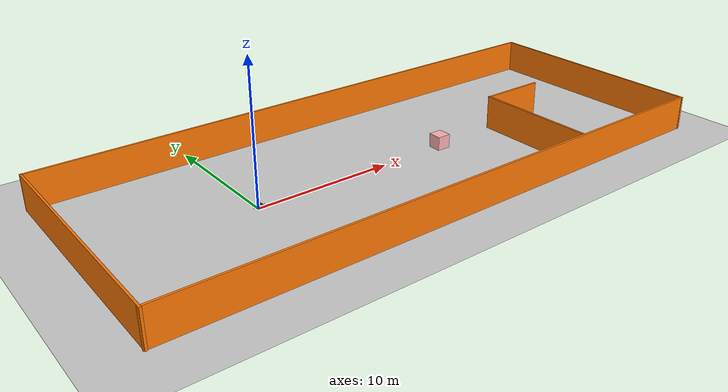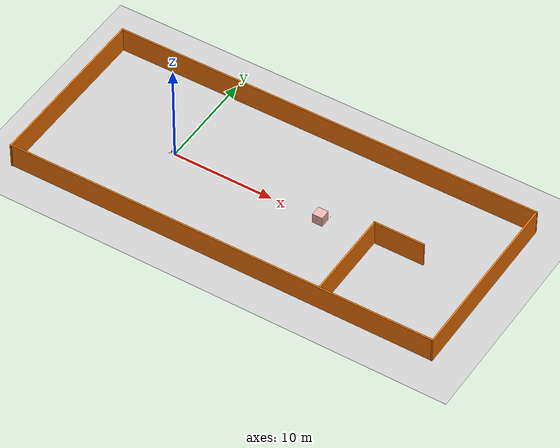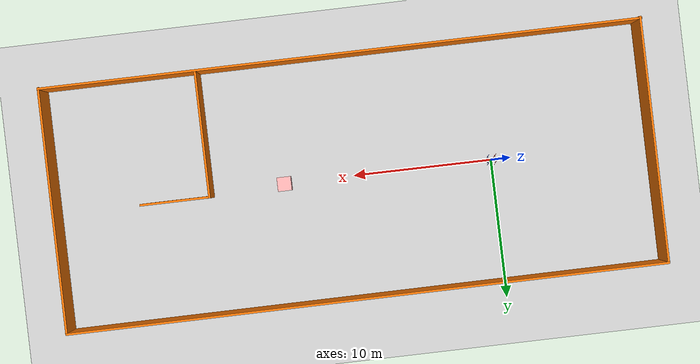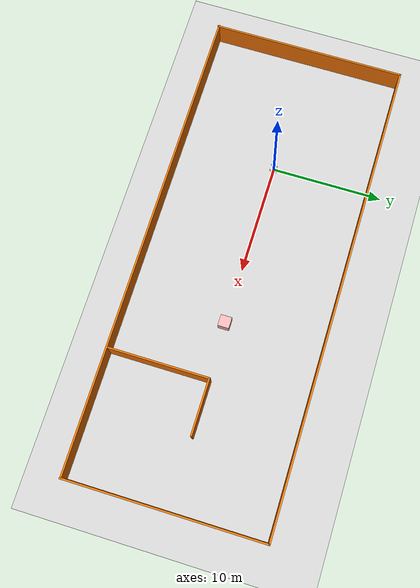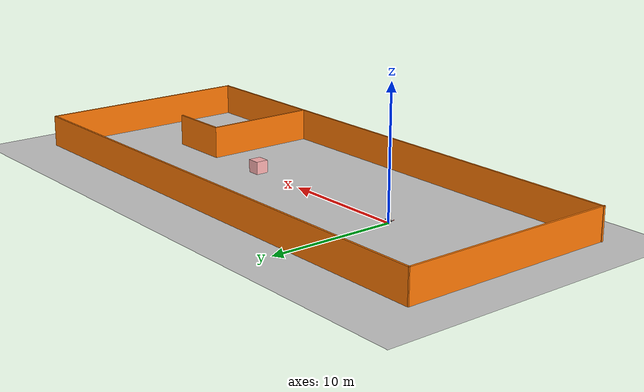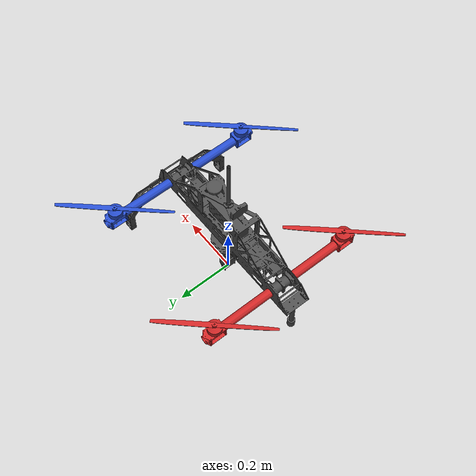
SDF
<sdf version="1.7">
 <world name="default">
  <light name="sun" type="directional">
   <pose>0 0 10 0 -0 0</pose>
   <diffuse>0.8 0.8 0.8 1</diffuse>
   <specular>0.2 0.2 0.2 1</specular>
   <attenuation>
    <range>1000</range>
    <constant>0.9</constant>
    <linear>0.01</linear>
    <quadratic>0.001</quadratic>
   </attenuation>
   <direction>-0.5 0.1 -0.9</direction>
   <spot><inner_angle>0</inner_angle><outer_angle>0</outer_angle><falloff>0</falloff></spot>
  </light>
  <model name="ground_plane">
   <static>1</static>
   <link name="link">
    <collision name="collision">
     <geometry><plane><normal>0 0 1</normal><size>100 100</size></plane></geometry>
     <surface><friction><ode><mu>100</mu><mu2>50</mu2></ode></friction></surface>
    </collision>
    <visual name="visual">
     <cast_shadows>0</cast_shadows>
     <geometry><plane><normal>0 0 1</normal><size>100 100</size></plane></geometry>
     <material>
      <script><uri>file://media/materials/scripts/gazebo.material</uri><name>Gazebo/Grey</name></script>
     </material>
    </visual>
   </link>
  </model>
  <gravity>0 0 -9.8</gravity>
  <magnetic_field>6e-06 2.3e-05 -4.2e-05</magnetic_field>
  <atmosphere type="adiabatic"/>
  <physics type="ode">
   <max_step_size>0.001</max_step_size>
   <real_time_factor>1</real_time_factor>
   <real_time_update_rate>1000</real_time_update_rate>
  </physics>
  <scene><ambient>0.4 0.4 0.4 1</ambient><background>0.7 0.7 0.7 1</background><shadows>1</shadows></scene>
  <spherical_coordinates>
   <surface_model>EARTH_WGS84</surface_model>
   <latitude_deg>0</latitude_deg>
   <longitude_deg>0</longitude_deg>
   <elevation>0</elevation>
   <heading_deg>0</heading_deg>
  </spherical_coordinates>
  <model name="selfdefine1">
   <link name="Wall_37">
    <pose>0.025291 8.67492 0 0 -0 0.002157</pose>
    <visual name="Wall_37_Visual">
     <pose>0 0 1.25 0 -0 0</pose>
     <geometry><box><size>42.6982 0.15 2.5</size></box></geometry>
     <material>
      <script><uri>file://media/materials/scripts/gazebo.material</uri><name>Gazebo/Grey</name></script>
      <ambient>0.996078 0.47451 0.0196078 1</ambient>
      <shader type="pixel"/>
     </material>
     <meta><layer>0</layer></meta>
    </visual>
    <collision name="Wall_37_Collision">
     <pose>0 0 1.25 0 -0 0</pose>
     <geometry><box><size>42.6982 0.15 2.5</size></box></geometry>
     <surface>
      <friction>
       <ode><mu>1</mu><mu2>1</mu2><fdir1>0 0 0</fdir1><slip1>0</slip1><slip2>0</slip2></ode>
       <torsional>
        <coefficient>1</coefficient>
        <patch_radius>0</patch_radius>
        <surface_radius>0</surface_radius>
        <use_patch_radius>1</use_patch_radius>
        <ode><slip>0</slip></ode>
       </torsional>
      </friction>
      <bounce><restitution_coefficient>0</restitution_coefficient><threshold>1e+06</threshold></bounce>
      <contact>
       <collide_without_contact>0</collide_without_contact>
       <collide_without_contact_bitmask>1</collide_without_contact_bitmask>
       <collide_bitmask>1</collide_bitmask>
       <ode>
        <soft_cfm>0</soft_cfm>
        <soft_erp>0.2</soft_erp>
        <kp>1e+13</kp>
        <kd>1</kd>
        <max_vel>0.01</max_vel>
        <min_depth>0</min_depth>
       </ode>
       <bullet>
        <split_impulse>1</split_impulse>
        <split_impulse_penetration_threshold>-0.01</split_impulse_penetration_threshold>
        <soft_cfm>0</soft_cfm>
        <soft_erp>0.2</soft_erp>
        <kp>1e+13</kp>
        <kd>1</kd>
       </bullet>
      </contact>
     </surface>
    </collision>
   </link>
   <link name="Wall_39">
    <pose>-21.2488 -0.045966 0 0 0 -1.5708</pose>
    <visual name="Wall_39_Visual">
     <pose>0 0 1.25 0 -0 0</pose>
     <geometry><box><size>17.5 0.15 2.5</size></box></geometry>
     <material>
      <script><uri>file://media/materials/scripts/gazebo.material</uri><name>Gazebo/Grey</name></script>
      <ambient>0.996078 0.47451 0.0196078 1</ambient>
      <shader type="pixel"/>
     </material>
     <meta><layer>0</layer></meta>
    </visual>
    <collision name="Wall_39_Collision">
     <pose>0 0 1.25 0 -0 0</pose>
     <geometry><box><size>17.5 0.15 2.5</size></box></geometry>
     <surface>
      <friction>
       <ode><mu>1</mu><mu2>1</mu2><fdir1>0 0 0</fdir1><slip1>0</slip1><slip2>0</slip2></ode>
       <torsional>
        <coefficient>1</coefficient>
        <patch_radius>0</patch_radius>
        <surface_radius>0</surface_radius>
        <use_patch_radius>1</use_patch_radius>
        <ode><slip>0</slip></ode>
       </torsional>
      </friction>
      <bounce><restitution_coefficient>0</restitution_coefficient><threshold>1e+06</threshold></bounce>
      <contact>
       <collide_without_contact>0</collide_without_contact>
       <collide_without_contact_bitmask>1</collide_without_contact_bitmask>
       <collide_bitmask>1</collide_bitmask>
       <ode>
        <soft_cfm>0</soft_cfm>
        <soft_erp>0.2</soft_erp>
        <kp>1e+13</kp>
        <kd>1</kd>
        <max_vel>0.01</max_vel>
        <min_depth>0</min_depth>
       </ode>
       <bullet>
        <split_impulse>1</split_impulse>
        <split_impulse_penetration_threshold>-0.01</split_impulse_penetration_threshold>
        <soft_cfm>0</soft_cfm>
        <soft_erp>0.2</soft_erp>
        <kp>1e+13</kp>
        <kd>1</kd>
       </bullet>
      </contact>
     </surface>
    </collision>
   </link>
   <link name="Wall_41">
    <pose>-2.1e-05 -8.64449 0 0 -0 0.000718</pose>
    <visual name="Wall_41_Visual">
     <pose>0 0 1.25 0 -0 0</pose>
     <geometry><box><size>42.7488 0.15 2.5</size></box></geometry>
     <material>
      <script><uri>file://media/materials/scripts/gazebo.material</uri><name>Gazebo/Grey</name></script>
      <ambient>0.996078 0.47451 0.0196078 1</ambient>
      <shader type="pixel"/>
     </material>
     <meta><layer>0</layer></meta>
    </visual>
    <collision name="Wall_41_Collision">
     <pose>0 0 1.25 0 -0 0</pose>
     <geometry><box><size>42.7488 0.15 2.5</size></box></geometry>
     <surface>
      <friction>
       <ode><mu>1</mu><mu2>1</mu2><fdir1>0 0 0</fdir1><slip1>0</slip1><slip2>0</slip2></ode>
       <torsional>
        <coefficient>1</coefficient>
        <patch_radius>0</patch_radius>
        <surface_radius>0</surface_radius>
        <use_patch_radius>1</use_patch_radius>
        <ode><slip>0</slip></ode>
       </torsional>
      </friction>
      <bounce><restitution_coefficient>0</restitution_coefficient><threshold>1e+06</threshold></bounce>
      <contact>
       <collide_without_contact>0</collide_without_contact>
       <collide_without_contact_bitmask>1</collide_without_contact_bitmask>
       <collide_bitmask>1</collide_bitmask>
       <ode>
        <soft_cfm>0</soft_cfm>
        <soft_erp>0.2</soft_erp>
        <kp>1e+13</kp>
        <kd>1</kd>
        <max_vel>0.01</max_vel>
        <min_depth>0</min_depth>
       </ode>
       <bullet>
        <split_impulse>1</split_impulse>
        <split_impulse_penetration_threshold>-0.01</split_impulse_penetration_threshold>
        <soft_cfm>0</soft_cfm>
        <soft_erp>0.2</soft_erp>
        <kp>1e+13</kp>
        <kd>1</kd>
       </bullet>
      </contact>
     </surface>
    </collision>
   </link>
   <link name="Wall_42">
    <pose>21.2994 0.015215 0 0 -0 1.5708</pose>
    <visual name="Wall_42_Visual">
     <pose>0 0 1.25 0 -0 0</pose>
     <geometry><box><size>17.5 0.15 2.5</size></box></geometry>
     <material>
      <script><uri>file://media/materials/scripts/gazebo.material</uri><name>Gazebo/Grey</name></script>
      <ambient>0.996078 0.47451 0.0196078 1</ambient>
      <shader type="pixel"/>
     </material>
     <meta><layer>0</layer></meta>
    </visual>
    <collision name="Wall_42_Collision">
     <pose>0 0 1.25 0 -0 0</pose>
     <geometry><box><size>17.5 0.15 2.5</size></box></geometry>
     <surface>
      <friction>
       <ode><mu>1</mu><mu2>1</mu2><fdir1>0 0 0</fdir1><slip1>0</slip1><slip2>0</slip2></ode>
       <torsional>
        <coefficient>1</coefficient>
        <patch_radius>0</patch_radius>
        <surface_radius>0</surface_radius>
        <use_patch_radius>1</use_patch_radius>
        <ode><slip>0</slip></ode>
       </torsional>
      </friction>
      <bounce><restitution_coefficient>0</restitution_coefficient><threshold>1e+06</threshold></bounce>
      <contact>
       <collide_without_contact>0</collide_without_contact>
       <collide_without_contact_bitmask>1</collide_without_contact_bitmask>
       <collide_bitmask>1</collide_bitmask>
       <ode>
        <soft_cfm>0</soft_cfm>
        <soft_erp>0.2</soft_erp>
        <kp>1e+13</kp>
        <kd>1</kd>
        <max_vel>0.01</max_vel>
        <min_depth>0</min_depth>
       </ode>
       <bullet>
        <split_impulse>1</split_impulse>
        <split_impulse_penetration_threshold>-0.01</split_impulse_penetration_threshold>
        <soft_cfm>0</soft_cfm>
        <soft_erp>0.2</soft_erp>
        <kp>1e+13</kp>
        <kd>1</kd>
       </bullet>
      </contact>
     </surface>
    </collision>
   </link>
   <link name="Wall_48">
    <pose>10.2345 -4.11049 0 0 -0 1.5708</pose>
    <visual name="Wall_48_Visual">
     <pose>0 0 1.25 0 -0 0</pose>
     <geometry><box><size>9 0.15 2.5</size></box></geometry>
     <material>
      <script><uri>file://media/materials/scripts/gazebo.material</uri><name>Gazebo/Grey</name></script>
      <ambient>0.996078 0.47451 0.0196078 1</ambient>
      <shader type="pixel"/>
     </material>
     <meta><layer>0</layer></meta>
    </visual>
    <collision name="Wall_48_Collision">
     <pose>0 0 1.25 0 -0 0</pose>
     <geometry><box><size>9 0.15 2.5</size></box></geometry>
     <surface>
      <friction>
       <ode><mu>1</mu><mu2>1</mu2><fdir1>0 0 0</fdir1><slip1>0</slip1><slip2>0</slip2></ode>
       <torsional>
        <coefficient>1</coefficient>
        <patch_radius>0</patch_radius>
        <surface_radius>0</surface_radius>
        <use_patch_radius>1</use_patch_radius>
        <ode><slip>0</slip></ode>
       </torsional>
      </friction>
      <bounce><restitution_coefficient>0</restitution_coefficient><threshold>1e+06</threshold></bounce>
      <contact>
       <collide_without_contact>0</collide_without_contact>
       <collide_without_contact_bitmask>1</collide_without_contact_bitmask>
       <collide_bitmask>1</collide_bitmask>
       <ode>
        <soft_cfm>0</soft_cfm>
        <soft_erp>0.2</soft_erp>
        <kp>1e+13</kp>
        <kd>1</kd>
        <max_vel>0.01</max_vel>
        <min_depth>0</min_depth>
       </ode>
       <bullet>
        <split_impulse>1</split_impulse>
        <split_impulse_penetration_threshold>-0.01</split_impulse_penetration_threshold>
        <soft_cfm>0</soft_cfm>
        <soft_erp>0.2</soft_erp>
        <kp>1e+13</kp>
        <kd>1</kd>
       </bullet>
      </contact>
     </surface>
    </collision>
   </link>
   <link name="Wall_50">
    <pose>12.6595 0.314514 0 0 -0 0</pose>
    <visual name="Wall_50_Visual">
     <pose>0 0 1.25 0 -0 0</pose>
     <geometry><box><size>5 0.15 2.5</size></box></geometry>
     <material>
      <script><uri>file://media/materials/scripts/gazebo.material</uri><name>Gazebo/Grey</name></script>
      <ambient>0.996078 0.47451 0.0196078 1</ambient>
      <shader type="pixel"/>
     </material>
     <meta><layer>0</layer></meta>
    </visual>
    <collision name="Wall_50_Collision">
     <pose>0 0 1.25 0 -0 0</pose>
     <geometry><box><size>5 0.15 2.5</size></box></geometry>
     <surface>
      <friction>
       <ode><mu>1</mu><mu2>1</mu2><fdir1>0 0 0</fdir1><slip1>0</slip1><slip2>0</slip2></ode>
       <torsional>
        <coefficient>1</coefficient>
        <patch_radius>0</patch_radius>
        <surface_radius>0</surface_radius>
        <use_patch_radius>1</use_patch_radius>
        <ode><slip>0</slip></ode>
       </torsional>
      </friction>
      <bounce><restitution_coefficient>0</restitution_coefficient><threshold>1e+06</threshold></bounce>
      <contact>
       <collide_without_contact>0</collide_without_contact>
       <collide_without_contact_bitmask>1</collide_without_contact_bitmask>
       <collide_bitmask>1</collide_bitmask>
       <ode>
        <soft_cfm>0</soft_cfm>
        <soft_erp>0.2</soft_erp>
        <kp>1e+13</kp>
        <kd>1</kd>
        <max_vel>0.01</max_vel>
        <min_depth>0</min_depth>
       </ode>
       <bullet>
        <split_impulse>1</split_impulse>
        <split_impulse_penetration_threshold>-0.01</split_impulse_penetration_threshold>
        <soft_cfm>0</soft_cfm>
        <soft_erp>0.2</soft_erp>
        <kp>1e+13</kp>
        <kd>1</kd>
       </bullet>
      </contact>
     </surface>
    </collision>
   </link>
   <link name="link_0">
    <inertial>
     <mass>1000</mass>
     <inertia><ixx>166.667</ixx><ixy>0</ixy><ixz>0</ixz><iyy>166.667</iyy><iyz>0</iyz><izz>166.667</izz></inertia>
    </inertial>
    <pose>5 0 0.5 0 -0 0</pose>
    <visual name="visual">
     <geometry><box><size>1 1 1</size></box></geometry>
     <material>
      <lighting>1</lighting>
      <script><uri>file://media/materials/scripts/gazebo.material</uri><name>Gazebo/Grey</name></script>
      <shader type="pixel"><normal_map>__default__</normal_map></shader>
      <ambient>1 0.3 0.3 1</ambient>
      <diffuse>1 0.7 0.7 1</diffuse>
      <specular>1 0.01 0.01 1</specular>
      <emissive>1 0 0 1</emissive>
     </material>
    </visual>
    <collision name="collision">
     <geometry><box><size>1 1 1</size></box></geometry>
     <surface>
      <friction>
       <ode><mu>1</mu><mu2>1</mu2><fdir1>0 0 0</fdir1><slip1>0</slip1><slip2>0</slip2></ode>
       <torsional>
        <coefficient>1</coefficient>
        <patch_radius>0</patch_radius>
        <surface_radius>0</surface_radius>
        <use_patch_radius>1</use_patch_radius>
        <ode><slip>0</slip></ode>
       </torsional>
      </friction>
      <bounce><restitution_coefficient>0</restitution_coefficient><threshold>1e+06</threshold></bounce>
      <contact>
       <collide_without_contact>0</collide_without_contact>
       <collide_without_contact_bitmask>1</collide_without_contact_bitmask>
       <collide_bitmask>1</collide_bitmask>
       <ode>
        <soft_cfm>0</soft_cfm>
        <soft_erp>0.2</soft_erp>
        <kp>1e+13</kp>
        <kd>1</kd>
        <max_vel>0.01</max_vel>
        <min_depth>0</min_depth>
       </ode>
       <bullet>
        <split_impulse>1</split_impulse>
        <split_impulse_penetration_threshold>-0.01</split_impulse_penetration_threshold>
        <soft_cfm>0</soft_cfm>
        <soft_erp>0.2</soft_erp>
        <kp>1e+13</kp>
        <kd>1</kd>
       </bullet>
      </contact>
     </surface>
    </collision>
   </link>
   <static>1</static>
   <pose>10 0 0 0 -0 0</pose>
  </model>
  <model name="quadtilt_am"><pose>0 0 0.25 0 0 0</pose><include><uri>model://quadtilt_am</uri></include></model>
  <model name="target">
   <pose>16.0 0.0 1.05 0 0 0</pose>
   <link name="link_0">
    <inertial>
     <mass>0.01</mass>
     <inertia><ixx>6.6e-07</ixx><ixy>0</ixy><ixz>0</ixz><iyy>6.6e-07</iyy><iyz>0</iyz><izz>6.6e-07</izz></inertia>
    </inertial>
    <collision name="collision">
     <geometry><box><size>0.02 0.02 0.02</size></box></geometry>
     <surface>
      <contact>
       <ode>
        <kp>1e+06</kp>
        <kd>100</kd>
        <soft_cfm>0.001</soft_cfm>
        <soft_erp>0.2</soft_erp>
        <max_vel>0.1</max_vel>
        <min_depth>0.001</min_depth>
       </ode>
      </contact>
      <friction><ode><mu>1.0</mu><mu2>1.0</mu2></ode></friction>
     </surface>
    </collision>
    <visual name="visual">
     <geometry><box><size>0.02 0.02 0.02</size></box></geometry>
     <material><ambient>0 0 1 1</ambient><diffuse>0 0 1 1</diffuse></material>
    </visual>
   </link>
   <static>0</static>
  </model>
 </world>
</sdf>

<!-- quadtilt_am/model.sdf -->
<sdf version='1.7'>
  <model name='quadtilt_new'>
    <link name='base_link'>
      <inertial>
        <pose>0.0 -0.000647 0.024368 0 -0 0</pose>
        <mass>2.3411</mass>
        <inertia>
          <ixx>0.0013622</ixx>
          <ixy>1.2109e-05</ixy>
          <ixz>2.1278e-05</ixz>
          <iyy>0.011253</iyy>
          <iyz>1.003e-06</iyz>
          <izz>0.011215</izz>
        </inertia>
      </inertial>

      <collision name='landing_gear_front_collision'>
      <pose>-0.3 0 -0.18 0 0 0</pose> <!-- ⚠️ 请替换为你前起落架脚尖的实际坐标 -->
      <geometry>
        <sphere><radius>0.03</radius></sphere>
      </geometry>
      <surface>
        <contact>
          <ode>
            <!-- [关键1] 降低刚度 kp。原本1e6太硬像钢铁，现在1e5(十万)像硬橡胶 -->
            <kp>1000000</kp>
            <!-- [关键2] 极大提高阻尼 kd。以前是100，现在2000。吸收一切高频震动动能 -->
            <kd>10</kd>
            <!-- [关键3] 给一个极小但非0的允许修正速度，防止挤压应力把 EKF 炸掉 -->
            <max_vel>0.2</max_vel>
            <!-- [关键4] 允许 5 毫米的弹性形变陷落深度，作为物理缓冲层 -->
            <min_depth>0.001</min_depth>
          </ode>
        </contact>
        <friction><ode><mu>1.0</mu><mu2>1.0</mu2></ode></friction>
      </surface>
    </collision>

    <!-- 左起落架脚垫 -->
    <collision name='landing_gear_left_collision'>
      <pose>0.3 0.2 -0.18 0 0 0</pose> <!-- ⚠️ 请替换为实际坐标 -->
      <geometry>
        <sphere><radius>0.03</radius></sphere>
      </geometry>
      <surface>
        <contact>
          <ode>
            <!-- [关键1] 降低刚度 kp。原本1e6太硬像钢铁，现在1e5(十万)像硬橡胶 -->
            <kp>1000000</kp>
            <!-- [关键2] 极大提高阻尼 kd。以前是100，现在2000。吸收一切高频震动动能 -->
            <kd>10</kd>
            <!-- [关键3] 给一个极小但非0的允许修正速度，防止挤压应力把 EKF 炸掉 -->
            <max_vel>0.2</max_vel>
            <!-- [关键4] 允许 5 毫米的弹性形变陷落深度，作为物理缓冲层 -->
            <min_depth>0.001</min_depth>
          </ode>
        </contact>
        <friction><ode><mu>1.0</mu><mu2>1.0</mu2></ode></friction>
      </surface>
    </collision>

    <!-- 右起落架脚垫 -->
    <collision name='landing_gear_right_collision'>
      <pose>0.3 -0.2 -0.18 0 0 0</pose> <!-- ⚠️ 请替换为实际坐标 -->
      <geometry>
        <sphere><radius>0.03</radius></sphere>
      </geometry>
      <surface>
        <contact>
          <ode>
            <!-- [关键1] 降低刚度 kp。原本1e6太硬像钢铁，现在1e5(十万)像硬橡胶 -->
            <kp>1000000</kp>
            <!-- [关键2] 极大提高阻尼 kd。以前是100，现在2000。吸收一切高频震动动能 -->
            <kd>10</kd>
            <!-- [关键3] 给一个极小但非0的允许修正速度，防止挤压应力把 EKF 炸掉 -->
            <max_vel>0.2</max_vel>
            <!-- [关键4] 允许 5 毫米的弹性形变陷落深度，作为物理缓冲层 -->
            <min_depth>0.001</min_depth>
          </ode>
        </contact>
        <friction><ode><mu>1.0</mu><mu2>1.0</mu2></ode></friction>
      </surface>
    </collision>

      <visual name='base_link_visual'>
        <pose>0 0 0 0 -0 0</pose>
        <geometry>
          <mesh>
            <scale>1 1 1</scale>
            <uri>model://quadtilt_new/meshes/base_link.STL</uri>
          </mesh>
        </geometry>
        <material>
          <script>
            <name>Gazebo/DarkGrey</name>
            <uri>file://media/materials/scripts/gazebo.material</uri>
          </script>
        </material>
      </visual>
    </link>

    <!-- IMU Link -->
    <link name='imu_link'>
      <pose>0 0 0 0 0 0</pose>
      <inertial>
        <pose>0 0 0 0 0 0</pose>
        <mass>0.015</mass>
        <inertia>
          <ixx>0.00001</ixx><ixy>0</ixy><ixz>0</ixz>
          <iyy>0.00002</iyy><iyz>0</iyz><izz>0.00002</izz>
        </inertia>
      </inertial>
      <sensor name="imu_sensor" type="imu">
        <pose>0 0 0 3.141593 0 0</pose>
        <always_on>1</always_on>
        <update_rate>1000.0</update_rate>
      </sensor>
    </link>
    <joint name='imu_joint' type='fixed'>
      <child>imu_link</child>
      <parent>base_link</parent>
    </joint>

    <joint name='tilt_0_joint' type='revolute'>
      <pose relative_to='base_link'>0.255 0 0 -1.5708 -1.5708 -3.14159</pose>
      <parent>base_link</parent>
      <child>tilt_0_Link</child>
      <axis>
        <xyz>0 0 1</xyz>
        <limit>
          <lower>-1.57</lower>
          <upper>1.57</upper>
          <effort>10</effort>
          <velocity>2</velocity>
        </limit>
        <dynamics>
          <spring_reference>0</spring_reference>
          <spring_stiffness>0</spring_stiffness>
        </dynamics>
      </axis>
    </joint>
    <link name='tilt_0_Link'>
      <pose relative_to='tilt_0_joint'>0 0 0 0 -0 0</pose>
      <inertial>
        <pose>0.028311 -0 -0 0 -0 0</pose>
        <mass>0.94736</mass>
        <inertia>
          <ixx>0.0033591</ixx>
          <ixy>-3.2015e-12</ixy>
          <ixz>5.825e-11</ixz>
          <iyy>0.0032937</iyy>
          <iyz>6.3798e-10</iyz>
          <izz>0.0001883</izz>
        </inertia>
      </inertial>
      <collision name='tilt_0_Link_collision'>
        <pose>0 0 0 0 -0 0</pose>
        <geometry>
          <mesh>
            <scale>1 1 1</scale>
            <uri>model://quadtilt_new/meshes/tilt_0_Link.STL</uri>
          </mesh>
        </geometry>
      </collision>
      <visual name='tilt_0_Link_visual'>
        <pose>0 0 0 0 -0 0</pose>
        <geometry>
          <mesh>
            <scale>1 1 1</scale>
            <uri>model://quadtilt_new/meshes/tilt_0_Link.STL</uri>
          </mesh>
        </geometry>
        <material><script><name>Gazebo/Blue</name></script></material>
      </visual>
    </link>
    <joint name='properller_0_joint' type='revolute'>
      <pose relative_to='tilt_0_Link'>0.05075 0 0.255 -1.5708 -0 -1.5708</pose>
      <parent>tilt_0_Link</parent>
      <child>properller_0_Link</child>
      <axis>
        <xyz>0 0 1</xyz>
        <limit>
          <lower>-1e+16</lower>
          <upper>1e+16</upper>
        </limit>
        <dynamics>
          <damping>0.002</damping>
          <friction>0.005</friction>
          <spring_reference>0</spring_reference>
          <spring_stiffness>0</spring_stiffness>
        </dynamics>
      </axis>
    </joint>
    <link name='properller_0_Link'>
      <pose relative_to='properller_0_joint'>0 0 0 0 -0 0</pose>
      <inertial>
        <pose>0 0 0.005 0 -0 0</pose>
        <mass>0.025</mass>
        <inertia>
          <ixx>0.00005</ixx>
          <ixy>0</ixy>
          <ixz>0</ixz>
          <iyy>0.00005</iyy>
          <iyz>0</iyz>
          <izz>0.0003</izz>  <!-- 匹配 15 寸桨的转动惯量 -->
        </inertia>
      </inertial>
      <visual name='properller_0_Link_visual'>
        <pose>0 0 0 0 -0 0</pose>
        <geometry>
          <mesh>
            <scale>1 1 1</scale>
            <uri>model://quadtilt_new/meshes/properller_0_Link.STL</uri>
          </mesh>
        </geometry>
        <material><script><name>Gazebo/Blue</name></script></material>
      </visual>
    </link>
    <joint name='properller_2_joint' type='revolute'>
      <pose relative_to='tilt_0_Link'>0.05075 0 -0.255 -1.5708 -0 -1.5708</pose>
      <parent>tilt_0_Link</parent>
      <child>properller_2_Link</child>
      <axis>
        <xyz>0 0 1</xyz>
        <limit>
          <lower>-1e+16</lower>
          <upper>1e+16</upper>
        </limit>
        <dynamics>
          <damping>0.002</damping>
          <friction>0.005</friction>
          <spring_reference>0</spring_reference>
          <spring_stiffness>0</spring_stiffness>
        </dynamics>
      </axis>
    </joint>
    <link name='properller_2_Link'>
      <pose relative_to='properller_2_joint'>0 0 0 0 -0 0</pose>
      <inertial>
        <pose>-0 -0 0.005 0 -0 0</pose>
        <mass>0.025</mass>
        <inertia>
          <ixx>0.00005</ixx>
          <ixy>0</ixy>
          <ixz>0</ixz>
          <iyy>0.00005</iyy>
          <iyz>0</iyz>
          <izz>0.0003</izz>  <!-- 匹配 15 寸桨的转动惯量 -->
        </inertia>
      </inertial>
      <visual name='properller_2_Link_visual'>
        <pose>0 0 0 0 -0 0</pose>
        <geometry>
          <mesh>
            <scale>1 1 1</scale>
            <uri>model://quadtilt_new/meshes/properller_2_Link.STL</uri>
          </mesh>
        </geometry>
        <material><script><name>Gazebo/Blue</name></script></material>
      </visual>
    </link>
    <joint name='tilt_1_joint' type='revolute'>
      <pose relative_to='base_link'>-0.255 0 0 -1.5708 -1.5708 -3.14159</pose>
      <parent>base_link</parent>
      <child>tilt_1_Link</child>
      <axis>
        <xyz>0 0 1</xyz>
        <limit>
          <lower>-1.57</lower>
          <upper>1.57</upper>
          <effort>10</effort>
          <velocity>2</velocity>
        </limit>
        <dynamics>
          <spring_reference>0</spring_reference>
          <spring_stiffness>0</spring_stiffness>
        </dynamics>
      </axis>
    </joint>
    <link name='tilt_1_Link'>
      <pose relative_to='tilt_1_joint'>0 0 0 0 -0 0</pose>
      <inertial>
        <pose>0.028311 -0 -0 0 -0 0</pose>
        <mass>0.94736</mass>
        <inertia>
          <ixx>0.0033591</ixx>
          <ixy>-3.2015e-12</ixy>
          <ixz>5.825e-11</ixz>
          <iyy>0.0032937</iyy>
          <iyz>6.3798e-10</iyz>
          <izz>0.0001883</izz>
        </inertia>
      </inertial>
      <collision name='tilt_1_Link_collision'>
        <pose>0 0 0 0 -0 0</pose>
        <geometry>
          <mesh>
            <scale>1 1 1</scale>
            <uri>model://quadtilt_new/meshes/tilt_1_Link.STL</uri>
          </mesh>
        </geometry>
      </collision>
      <visual name='tilt_1_Link_visual'>
        <pose>0 0 0 0 -0 0</pose>
        <geometry>
          <mesh>
            <scale>1 1 1</scale>
            <uri>model://quadtilt_new/meshes/tilt_1_Link.STL</uri>
          </mesh>
        </geometry>
        <material><script><name>Gazebo/Red</name></script></material>
      </visual>
    </link>
    <joint name='properller_1_joint' type='revolute'>
      <pose relative_to='tilt_1_Link'>0.05075 0 -0.255 -1.5708 -0 -1.5708</pose>
      <parent>tilt_1_Link</parent>
      <child>properller_1_Link</child>
      <axis>
        <xyz>0 0 1</xyz>
        <limit>
          <lower>-1e+16</lower>
          <upper>1e+16</upper>
        </limit>
        <dynamics>
          <damping>0.002</damping>
          <friction>0.005</friction>
          <spring_reference>0</spring_reference>
          <spring_stiffness>0</spring_stiffness>
        </dynamics>
      </axis>
    </joint>
    <link name='properller_1_Link'>
      <pose relative_to='properller_1_joint'>0 0 0 0 -0 0</pose>
      <inertial>
        <pose>-0 -0 0.005 0 -0 0</pose>
        <mass>0.025</mass>
        <inertia>
          <ixx>0.00005</ixx>
          <ixy>0</ixy>
          <ixz>0</ixz>
          <iyy>0.00005</iyy>
          <iyz>0</iyz>
          <izz>0.0003</izz>  <!-- 匹配 15 寸桨的转动惯量 -->
        </inertia>
      </inertial>
      <visual name='properller_1_Link_visual'>
        <pose>0 0 0 0 -0 0</pose>
        <geometry>
          <mesh>
            <scale>1 1 1</scale>
            <uri>model://quadtilt_new/meshes/properller_1_Link.STL</uri>
          </mesh>
        </geometry>
        <material><script><name>Gazebo/Red</name></script></material>
      </visual>
    </link>
    <joint name='properller_3_joint' type='revolute'>
      <pose relative_to='tilt_1_Link'>0.05075 0 0.255 -1.5708 -0 -1.5708</pose>
      <parent>tilt_1_Link</parent>
      <child>properller_3_Link</child>
      <axis>
        <xyz>0 0 1</xyz>
        <limit>
          <lower>-1e+16</lower>
          <upper>1e+16</upper>
        </limit>
        <dynamics>
          <spring_reference>0</spring_reference>
          <spring_stiffness>0</spring_stiffness>
        </dynamics>
      </axis>
    </joint>
    <link name='properller_3_Link'>
      <pose relative_to='properller_3_joint'>0 0 0 0 -0 0</pose>
      <inertial>
        <pose>0 0 0.005 0 -0 0</pose>
        <mass>0.025</mass>
        <inertia>
          <ixx>0.00005</ixx>
          <ixy>0</ixy>
          <ixz>0</ixz>
          <iyy>0.00005</iyy>
          <iyz>0</iyz>
          <izz>0.0003</izz>  <!-- 匹配 15 寸桨的转动惯量 -->
        </inertia>
      </inertial>
      <visual name='properller_3_Link_visual'>
        <pose>0 0 0 0 -0 0</pose>
        <geometry>
          <mesh>
            <scale>1 1 1</scale>
            <uri>model://quadtilt_new/meshes/properller_3_Link.STL</uri>
          </mesh>
        </geometry>
        <material><script><name>Gazebo/Red</name></script></material>
      </visual>
    </link>

    <!-- 插件区域 (气动 + 飞控)                                      -->

    <!-- Aero Prop 0 (CCW) -->
    <plugin name="rotor_0_blade_1" filename="libLiftDragPlugin.so"><a0>0.3</a0><alpha_stall>1.4</alpha_stall><cla>4.25</cla><cda>0.10</cda><cma>0.0</cma><cla_stall>-0.025</cla_stall><cda_stall>0.0</cda_stall><cma_stall>0.0</cma_stall><area>0.0045</area><air_density>1.2041</air_density><cp>0.13 0 0</cp><forward>0 1 0</forward><upward>0 0 1</upward><link_name>properller_0_Link</link_name></plugin>
    <plugin name="rotor_0_blade_2" filename="libLiftDragPlugin.so"><a0>0.3</a0><alpha_stall>1.4</alpha_stall><cla>4.25</cla><cda>0.10</cda><cma>0.0</cma><cla_stall>-0.025</cla_stall><cda_stall>0.0</cda_stall><cma_stall>0.0</cma_stall><area>0.0045</area><air_density>1.2041</air_density><cp>-0.13 0 0</cp><forward>0 -1 0</forward><upward>0 0 1</upward><link_name>properller_0_Link</link_name></plugin>

    <!-- Aero Prop 1 (CCW) -->
    <plugin name="rotor_1_blade_1" filename="libLiftDragPlugin.so"><a0>0.3</a0><alpha_stall>1.4</alpha_stall><cla>4.25</cla><cda>0.10</cda><cma>0.0</cma><cla_stall>-0.025</cla_stall><cda_stall>0.0</cda_stall><cma_stall>0.0</cma_stall><area>0.0045</area><air_density>1.2041</air_density><cp>0.13 0 0</cp><forward>0 1 0</forward><upward>0 0 1</upward><link_name>properller_1_Link</link_name></plugin>
    <plugin name="rotor_1_blade_2" filename="libLiftDragPlugin.so"><a0>0.3</a0><alpha_stall>1.4</alpha_stall><cla>4.25</cla><cda>0.10</cda><cma>0.0</cma><cla_stall>-0.025</cla_stall><cda_stall>0.0</cda_stall><cma_stall>0.0</cma_stall><area>0.0045</area><air_density>1.2041</air_density><cp>-0.13 0 0</cp><forward>0 -1 0</forward><upward>0 0 1</upward><link_name>properller_1_Link</link_name></plugin>

    <!-- Aero Prop 2 (CW) -->
    <plugin name="rotor_2_blade_1" filename="libLiftDragPlugin.so"><a0>0.3</a0><alpha_stall>1.4</alpha_stall><cla>4.25</cla><cda>0.10</cda><cma>0.0</cma><cla_stall>-0.025</cla_stall><cda_stall>0.0</cda_stall><cma_stall>0.0</cma_stall><area>0.0045</area><air_density>1.2041</air_density><cp>0.13 0 0</cp><forward>0 -1 0</forward><upward>0 0 1</upward><link_name>properller_2_Link</link_name></plugin>
    <plugin name="rotor_2_blade_2" filename="libLiftDragPlugin.so"><a0>0.3</a0><alpha_stall>1.4</alpha_stall><cla>4.25</cla><cda>0.10</cda><cma>0.0</cma><cla_stall>-0.025</cla_stall><cda_stall>0.0</cda_stall><cma_stall>0.0</cma_stall><area>0.0045</area><air_density>1.2041</air_density><cp>-0.13 0 0</cp><forward>0 1 0</forward><upward>0 0 1</upward><link_name>properller_2_Link</link_name></plugin>

    <!-- Aero Prop 3 (CW) -->
    <plugin name="rotor_3_blade_1" filename="libLiftDragPlugin.so"><a0>0.3</a0><alpha_stall>1.4</alpha_stall><cla>4.25</cla><cda>0.10</cda><cma>0.0</cma><cla_stall>-0.025</cla_stall><cda_stall>0.0</cda_stall><cma_stall>0.0</cma_stall><area>0.0045</area><air_density>1.2041</air_density><cp>0.13 0 0</cp><forward>0 -1 0</forward><upward>0 0 1</upward><link_name>properller_3_Link</link_name></plugin>
    <plugin name="rotor_3_blade_2" filename="libLiftDragPlugin.so"><a0>0.3</a0><alpha_stall>1.4</alpha_stall><cla>4.25</cla><cda>0.10</cda><cma>0.0</cma><cla_stall>-0.025</cla_stall><cda_stall>0.0</cda_stall><cma_stall>0.0</cma_stall><area>0.0045</area><air_density>1.2041</air_density><cp>-0.13 0 0</cp><forward>0 1 0</forward><upward>0 0 1</upward><link_name>properller_3_Link</link_name></plugin>

    <!-- ArduPilot Control -->
    <plugin name="ardupilot_plugin" filename="libArduPilotPlugin.so">
      <fdm_addr>127.0.0.1</fdm_addr>
      <fdm_port_in>9002</fdm_port_in>
      <fdm_port_out>9003</fdm_port_out>
      <modelXYZToAirplaneXForwardZDown>0 0 0 3.141593 0 0</modelXYZToAirplaneXForwardZDown>
      <imuName>quadtilt_new::imu_link::imu_sensor</imuName>
      <connectionTimeoutMaxCount>5</connectionTimeoutMaxCount>

      <!-- Motors (0-3) -->
      <control channel="0"><type>VELOCITY</type><offset>0</offset><p_gain>0.20</p_gain><i_gain>0</i_gain><d_gain>0</d_gain><i_max>0</i_max><i_min>0</i_min><cmd_max>2.5</cmd_max><cmd_min>-2.5</cmd_min><jointName>properller_0_joint</jointName><multiplier>800</multiplier></control>
      <control channel="1"><type>VELOCITY</type><offset>0</offset><p_gain>0.20</p_gain><i_gain>0</i_gain><d_gain>0</d_gain><i_max>0</i_max><i_min>0</i_min><cmd_max>2.5</cmd_max><cmd_min>-2.5</cmd_min><jointName>properller_1_joint</jointName><multiplier>800</multiplier></control>
      <control channel="2"><type>VELOCITY</type><offset>0</offset><p_gain>0.20</p_gain><i_gain>0</i_gain><d_gain>0</d_gain><i_max>0</i_max><i_min>0</i_min><cmd_max>2.5</cmd_max><cmd_min>-2.5</cmd_min><jointName>properller_2_joint</jointName><multiplier>-800</multiplier></control>
      <control channel="3"><type>VELOCITY</type><offset>0</offset><p_gain>0.20</p_gain><i_gain>0</i_gain><d_gain>0</d_gain><i_max>0</i_max><i_min>0</i_min><cmd_max>2.5</cmd_max><cmd_min>-2.5</cmd_min><jointName>properller_3_joint</jointName><multiplier>-800</multiplier></control>

      <!-- Tilt Servos (4-7)  -->
      <!-- deg_out_red = multiplier*(input(pwm to 0-1)+offset) -->
      <control channel="4"><type>POSITION</type><offset>-0.85</offset><p_gain>40.0</p_gain><i_gain>0</i_gain><d_gain>0.5</d_gain><i_max>0</i_max><i_min>0</i_min><cmd_max>2.0</cmd_max><cmd_min>-2.0</cmd_min><jointName>tilt_0_joint</jointName><multiplier>1.495</multiplier></control>
      <control channel="5"><type>POSITION</type><offset>-0.85</offset><p_gain>40.0</p_gain><i_gain>0</i_gain><d_gain>0.5</d_gain><i_max>0</i_max><i_min>0</i_min><cmd_max>2.0</cmd_max><cmd_min>-2.0</cmd_min><jointName>tilt_1_joint</jointName><multiplier>1.495</multiplier></control>
      <control channel="6">
        <type>POSITION</type>
        <offset>-0.5</offset>
        <p_gain>20.0</p_gain>
        <i_gain>0</i_gain>
        <d_gain>0</d_gain>
        <i_max>0</i_max>
        <i_min>0</i_min>
        <cmd_max>2.0</cmd_max>
        <cmd_min>-2.0</cmd_min>
        <jointName>robotic_arm::joint_1</jointName>
        <multiplier>4.7124</multiplier>
      </control>
      <control channel="7">
        <type>POSITION</type>
        <offset>-0.5</offset>
        <p_gain>20.0</p_gain>
        <i_gain>0</i_gain>
        <d_gain>0.05</d_gain>
        <i_max>0</i_max>
        <i_min>0</i_min>
        <cmd_max>2.0</cmd_max>
        <cmd_min>-2.0</cmd_min>
        <jointName>robotic_arm::joint_2</jointName>
        <multiplier>4.7124</multiplier>
      </control>
      <control channel="8">
        <type>POSITION</type>
        <offset>-0.5</offset>
        <p_gain>20.0</p_gain>
        <i_gain>0</i_gain>
        <d_gain>0.05</d_gain>
        <i_max>0</i_max>
        <i_min>0</i_min>
        <cmd_max>2.0</cmd_max>
        <cmd_min>-2.0</cmd_min>
        <jointName>robotic_arm::joint_3</jointName>
        <multiplier>4.7124</multiplier>
      </control>
      <control channel="9">
        <type>POSITION</type>
        <offset>-0.5</offset>
        <p_gain>20.0</p_gain>
        <i_gain>0</i_gain>
        <d_gain>0.05</d_gain>
        <i_max>0</i_max>
        <i_min>0</i_min>
        <cmd_max>2.0</cmd_max>
        <cmd_min>-2.0</cmd_min>
        <jointName>robotic_arm::joint_4</jointName>
        <multiplier>4.7124</multiplier>
      </control>
      <control channel="10">
        <type>POSITION</type>
        <offset>-0.5</offset>
        <p_gain>10.0</p_gain>
        <i_gain>0</i_gain>
        <d_gain>0</d_gain>
        <i_max>0</i_max>
        <i_min>0</i_min>
        <cmd_max>2.0</cmd_max>
        <cmd_min>-2.0</cmd_min>
        <jointName>robotic_arm::joint_5</jointName>
        <multiplier>4.7124</multiplier>
      </control>

<!-- Gripper Left Finger (Channel 11) -->
      <control channel="11">
        <type>POSITION</type>
        <offset>0</offset>
        <!-- 【关键修改】 P值降到极低，只要能缓慢合上就行 -->
        <p_gain>0.5</p_gain>
        <i_gain>0</i_gain>
        <!-- 【关键修改】 D值降到微小，防止导数项放大高频噪声 -->
        <d_gain>0.01</d_gain>
        <i_max>0</i_max>
        <i_min>0</i_min>
        <!-- 【关键修改】 限制最大输出力矩为 1N，5g的物体1N足够推得飞快了 -->
        <cmd_max>1.0</cmd_max>
        <cmd_min>-1.0</cmd_min>
        <jointName>robotic_arm::left_finger_joint</jointName>
        <multiplier>0.025</multiplier>
      </control>

      <!-- Gripper Right Finger (Channel 11) -->
      <control channel="11">
        <type>POSITION</type>
        <offset>0</offset>
        <p_gain>0.5</p_gain>
        <i_gain>0</i_gain>
        <d_gain>0.01</d_gain>
        <i_max>0</i_max>
        <i_min>0</i_min>
        <cmd_max>1.0</cmd_max>
        <cmd_min>-1.0</cmd_min>
        <jointName>robotic_arm::right_finger_joint</jointName>
        <multiplier>0.025</multiplier>
      </control>

    </plugin>

    <include>
      <uri>model://robotic_arm</uri>
      <name>robotic_arm</name>
      <pose>0 0 -0.04 3.1416 0 0</pose> <!-- 挂在飞机重心下方 -->
    </include>

    <joint name="arm_weld" type="fixed">
      <parent>base_link</parent> <!-- 飞机的底座名字 -->
      <child>robotic_arm::base_link</child>
    </joint>

  </model>
</sdf>

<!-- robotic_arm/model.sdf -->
<sdf version='1.7'>
  <model name='robotic_arm'>
    <link name='base_link'>
      <inertial>
        <pose>-0.000805 -3.1e-05 0.015733 0 -0 0</pose>
        <mass>0.34432</mass>
        <inertia>
          <ixx>0.00026968</ixx>
          <ixy>-2.6656e-10</ixy>
          <ixz>-8.0892e-08</ixz>
          <iyy>0.00027222</iyy>
          <iyz>-9.1152e-11</iyz>
          <izz>0.00052932</izz>
        </inertia>
      </inertial>
      <visual name='base_link_visual'>
        <pose>0 0 0 0 -0 0</pose>
        <geometry>
          <mesh>
            <scale>1 1 1</scale>
            <uri>model://robotic_arm/meshes/base_link.STL</uri>
          </mesh>
        </geometry>
        <material>
          <script>
            <name>Gazebo/DarkGrey</name>
            <uri>file://media/materials/scripts/gazebo.material</uri>
          </script>
        </material>
      </visual>
    </link>
    <joint name='joint_1' type='revolute'>
      <pose relative_to='base_link'>0 0 0.03 0 -0 0</pose>
      <parent>base_link</parent>
      <child>link_1</child>
      <axis>
        <xyz>0 0 -1</xyz>
        <limit>
          <lower>-2.36</lower>
          <upper>2.36</upper>
          <effort>10</effort>
          <velocity>1.5</velocity>
        </limit>
        <dynamics>
          <damping>0.05</damping>
          <friction>0.01</friction>
          <spring_reference>0</spring_reference>
          <spring_stiffness>0</spring_stiffness>
        </dynamics>
      </axis>
      <physics>
        <ode>
          <implicit_spring_damper>1</implicit_spring_damper>
          <cfm_damping>1</cfm_damping>
          <limit>
            <cfm>0</cfm>
            <erp>0.2</erp>
          </limit>
        </ode>
      </physics>
    </joint>
    <link name='link_1'>
      <pose relative_to='joint_1'>0 0 0 0 -0 0</pose>
      <inertial>
        <pose>-2.1e-05 0.000147 0.016563 0 -0 0</pose>
        <mass>0.057604</mass>
        <inertia>
          <ixx>1.8263e-05</ixx>
          <ixy>-3.807e-10</ixy>
          <ixz>-1.4763e-10</ixz>
          <iyy>1.3985e-05</iyy>
          <iyz>-2.922e-08</iyz>
          <izz>2.307e-05</izz>
        </inertia>
      </inertial>
      <visual name='link_1_visual'>
        <pose>0 0 0 0 -0 0</pose>
        <geometry>
          <mesh>
            <scale>1 1 1</scale>
            <uri>model://robotic_arm/meshes/link_1.STL</uri>
          </mesh>
        </geometry>
        <material>
          <script>
            <name>Gazebo/DarkGrey</name>
            <uri>file://media/materials/scripts/gazebo.material</uri>
          </script>
        </material>
      </visual>
    </link>
    <joint name='joint_2' type='revolute'>
      <pose relative_to='link_1'>0.000113 0 0.038401 -1.57079 -1.57079 -3.14159</pose>
      <parent>link_1</parent>
      <child>link_2</child>
      <axis>
        <xyz>0 0 1</xyz>
        <limit>
          <lower>-2.36</lower>
          <upper>2.36</upper>
          <effort>10</effort>
          <velocity>1.5</velocity>
        </limit>
        <dynamics>
          <damping>0.05</damping>
          <friction>0.01</friction>
          <spring_reference>0</spring_reference>
          <spring_stiffness>0</spring_stiffness>
        </dynamics>
      </axis>
      <physics>
        <ode>
          <implicit_spring_damper>1</implicit_spring_damper>
          <cfm_damping>1</cfm_damping>
          <limit>
            <cfm>0</cfm>
            <erp>0.2</erp>
          </limit>
        </ode>
      </physics>
    </joint>
    <link name='link_2'>
      <pose relative_to='joint_2'>0 0 0 0 -0 0</pose>
      <inertial>
        <pose>0.056726 -0 -0.000271 0 -0 0</pose>
        <mass>0.039095</mass>
        <inertia>
          <ixx>1.0114e-05</ixx>
          <ixy>7.2762e-21</ixy>
          <ixz>2.0973e-19</ixz>
          <iyy>1.4176e-05</iyy>
          <iyz>3.677e-21</iyz>
          <izz>7.7479e-06</izz>
        </inertia>
      </inertial>
      <visual name='link_2_visual'>
        <pose>0 0 0 0 -0 0</pose>
        <geometry>
          <mesh>
            <scale>1 1 1</scale>
            <uri>model://robotic_arm/meshes/link_2.STL</uri>
          </mesh>
        </geometry>
        <material>
          <script>
            <name>Gazebo/DarkGrey</name>
            <uri>file://media/materials/scripts/gazebo.material</uri>
          </script>
        </material>
      </visual>
    </link>
    <joint name='joint_3' type='revolute'>
      <pose relative_to='link_2'>0.10507 0 0 0 -0 0</pose>
      <parent>link_2</parent>
      <child>link_3</child>
      <axis>
        <xyz>0 0 1</xyz>
        <limit>
          <lower>-2.36</lower>
          <upper>2.36</upper>
          <effort>10</effort>
          <velocity>1.5</velocity>
        </limit>
        <dynamics>
          <damping>0.05</damping>
          <friction>0.01</friction>
          <spring_reference>0</spring_reference>
          <spring_stiffness>0</spring_stiffness>
        </dynamics>
      </axis>
      <physics>
        <ode>
          <implicit_spring_damper>1</implicit_spring_damper>
          <cfm_damping>1</cfm_damping>
          <limit>
            <cfm>0</cfm>
            <erp>0.2</erp>
          </limit>
        </ode>
      </physics>
    </joint>
    <link name='link_3'>
      <pose relative_to='joint_3'>0 0 0 0 -0 0</pose>
      <inertial>
        <pose>0.043581 -0.000872 -0.000243 0 -0 0</pose>
        <mass>0.075843</mass>
        <inertia>
          <ixx>1.4302e-05</ixx>
          <ixy>2.9527e-10</ixy>
          <ixz>-1.407e-12</ixz>
          <iyy>2.3711e-05</iyy>
          <iyz>-4.2397e-20</iyz>
          <izz>1.4547e-05</izz>
        </inertia>
      </inertial>
      <visual name='link_3_visual'>
        <pose>0 0 0 0 -0 0</pose>
        <geometry>
          <mesh>
            <scale>1 1 1</scale>
            <uri>model://robotic_arm/meshes/link_3.STL</uri>
          </mesh>
        </geometry>
        <material>
          <script>
            <name>Gazebo/DarkGrey</name>
            <uri>file://media/materials/scripts/gazebo.material</uri>
          </script>
        </material>
      </visual>
    </link>
    <joint name='joint_4' type='revolute'>
      <pose relative_to='link_3'>0.087162 -0.000311 -0.000271 0 -0 0</pose>
      <parent>link_3</parent>
      <child>link_4</child>
      <axis>
        <xyz>0 0 1</xyz>
        <limit>
          <lower>-2.36</lower>
          <upper>2.36</upper>
          <effort>10</effort>
          <velocity>1.5</velocity>
        </limit>
        <dynamics>
          <damping>0.05</damping>
          <friction>0.01</friction>
          <spring_reference>0</spring_reference>
          <spring_stiffness>0</spring_stiffness>
        </dynamics>
      </axis>
      <physics>
        <ode>
          <implicit_spring_damper>1</implicit_spring_damper>
          <cfm_damping>1</cfm_damping>
          <limit>
            <cfm>0</cfm>
            <erp>0.2</erp>
          </limit>
        </ode>
      </physics>
    </joint>
    <link name='link_4'>
      <pose relative_to='joint_4'>0 0 0 0 -0 0</pose>
      <inertial>
        <pose>0.044666 0.009062 0.000129 0 -0 0</pose>
        <mass>0.038113</mass>
        <inertia>
          <ixx>7.4825e-06</ixx>
          <ixy>-5.112e-07</ixy>
          <ixz>3.807e-10</ixz>
          <iyy>1.0505e-05</iyy>
          <iyz>-1.4763e-10</iyz>
          <izz>1.2542e-05</izz>
        </inertia>
      </inertial>
      <visual name='link_4_visual'>
        <pose>0 0 0 0 -0 0</pose>
        <geometry>
          <mesh>
            <scale>1 1 1</scale>
            <uri>model://robotic_arm/meshes/link_4.STL</uri>
          </mesh>
        </geometry>
        <material>
          <script>
            <name>Gazebo/DarkGrey</name>
            <uri>file://media/materials/scripts/gazebo.material</uri>
          </script>
        </material>
      </visual>
    </link>
    <joint name='joint_5' type='revolute'>
      <pose relative_to='link_4'>0.073 0 0 -1.5708 -0 -1.5708</pose>
      <parent>link_4</parent>
      <child>link_5</child>
      <axis>
        <xyz>0 0 -1</xyz>
        <limit>
          <lower>-2.36</lower>
          <upper>2.36</upper>
          <effort>10</effort>
          <velocity>1.5</velocity>
        </limit>
        <dynamics>
          <damping>0.05</damping>
          <friction>0.01</friction>
          <spring_reference>0</spring_reference>
          <spring_stiffness>0</spring_stiffness>
        </dynamics>
      </axis>
      <physics>
        <ode>
          <implicit_spring_damper>1</implicit_spring_damper>
          <cfm_damping>1</cfm_damping>
          <limit>
            <cfm>0</cfm>
            <erp>0.2</erp>
          </limit>
        </ode>
      </physics>
    </joint>

<!-- ================= 合并了夹爪基座的 link_5 ================= -->
    <link name='link_5'>
      <pose relative_to='joint_5'>0 0 0 0 -0 0</pose>
      <inertial>
        <!-- 稍微上移重心，合并了基座的10g和原来link5的10g -->
        <pose>0 0 0.01 0 -0 0</pose>
        <mass>0.02</mass>
        <!-- 【核心修复】将极度微小的 1.9e-08 提升到安全的 1e-05，彻底解决抽风和撕裂 -->
        <inertia>
          <ixx>1e-05</ixx><ixy>0</ixy><ixz>0</ixz>
          <iyy>1e-05</iyy><iyz>0</iyz><izz>1e-05</izz>
        </inertia>
      </inertial>

      <!-- 1. 原来 link_5 的微小网格视觉 -->
      <visual name='link_5_visual'>
        <pose>0 0 0 0 -0 0</pose>
        <geometry>
          <mesh>
            <scale>1 1 1</scale>
            <uri>model://robotic_arm/meshes/link_5.STL</uri>
          </mesh>
        </geometry>
        <material>
          <script>
            <name>Gazebo/DarkGrey</name>
            <uri>file://media/materials/scripts/gazebo.material</uri>
          </script>
        </material>
      </visual>

      <!-- 2. 追加：夹爪基座的视觉，直接作为 link_5 的一部分 -->
      <!-- Z=0.02 是 40mm 高度基座的中心 -->
      <visual name='gripper_base_visual'>
        <pose>0 0 0.02 0 0 0</pose>
        <geometry><box><size>0.03 0.06 0.04</size></box></geometry>
        <material>
          <script>
            <name>Gazebo/Black</name>
            <uri>file://media/materials/scripts/gazebo.material</uri>
          </script>
        </material>
      </visual>
      <!-- (基座碰撞暂不添加，保持你说的删除碰撞防抽风状态) -->
    </link>

    <!-- ================= 左侧手指 (直接连在 link_5 上) ================= -->
    <joint name='left_finger_joint' type='prismatic'>
      <!-- 关节直接挂在 link_5 的 Z=0.04(基座顶部) 位置 -->
      <pose relative_to='link_5'>0 0.005 0.04 0 0 0</pose>
      <parent>link_5</parent>
      <child>left_finger</child>
      <axis>
        <xyz>0 1 0</xyz>
        <limit>
          <lower>0</lower>
          <upper>0.03</upper>
          <effort>1.0</effort> <!-- 仅需极小力矩驱动 -->
          <velocity>0.2</velocity>
        </limit>
        <dynamics><damping>0.1</damping><friction>0.05</friction></dynamics>
      </axis>
      <physics>
        <ode>
          <implicit_spring_damper>1</implicit_spring_damper>
          <cfm_damping>1</cfm_damping>
        </ode>
      </physics>
    </joint>

    <link name='left_finger'>
      <!-- 手指长 42mm，从关节再向上延伸 21mm 为中心 -->
      <pose relative_to='left_finger_joint'>0 0 0.021 0 0 0</pose>
      <inertial>
        <mass>0.005</mass>
        <inertia>
          <ixx>1e-05</ixx><ixy>0</ixy><ixz>0</ixz>
          <iyy>1e-05</iyy><iyz>0</iyz><izz>1e-05</izz>
        </inertia>
      </inertial>
      <visual name='left_finger_visual'>
        <geometry><box><size>0.02 0.01 0.042</size></box></geometry>
        <material>
          <script>
            <name>Gazebo/Grey</name>
            <uri>file://media/materials/scripts/gazebo.material</uri>
          </script>
        </material>
      </visual>
    </link>

    <!-- ================= 右侧手指 (直接连在 link_5 上) ================= -->
    <joint name='right_finger_joint' type='prismatic'>
      <pose relative_to='link_5'>0 -0.005 0.04 0 0 0</pose>
      <parent>link_5</parent>
      <child>right_finger</child>
      <axis>
        <xyz>0 -1 0</xyz>
        <limit>
          <lower>0</lower>
          <upper>0.03</upper>
          <effort>1.0</effort>
          <velocity>0.2</velocity>
        </limit>
        <dynamics><damping>0.1</damping><friction>0.05</friction></dynamics>
      </axis>
      <physics>
        <ode>
          <implicit_spring_damper>1</implicit_spring_damper>
          <cfm_damping>1</cfm_damping>
        </ode>
      </physics>
    </joint>

    <link name='right_finger'>
      <pose relative_to='right_finger_joint'>0 0 0.021 0 0 0</pose>
      <inertial>
        <mass>0.005</mass>
        <inertia>
          <ixx>1e-05</ixx><ixy>0</ixy><ixz>0</ixz>
          <iyy>1e-05</iyy><iyz>0</iyz><izz>1e-05</izz>
        </inertia>
      </inertial>
      <visual name='right_finger_visual'>
        <geometry><box><size>0.02 0.01 0.042</size></box></geometry>
        <material>
          <script>
            <name>Gazebo/Grey</name>
            <uri>file://media/materials/scripts/gazebo.material</uri>
          </script>
        </material>
      </visual>
    </link>

    <frame name='flange_to_tool0' attached_to='link_5'>
      <pose>0 0 0 0 -0 0</pose>
    </frame>
    <frame name='tool0' attached_to='flange_to_tool0'/>
  </model>
</sdf>
